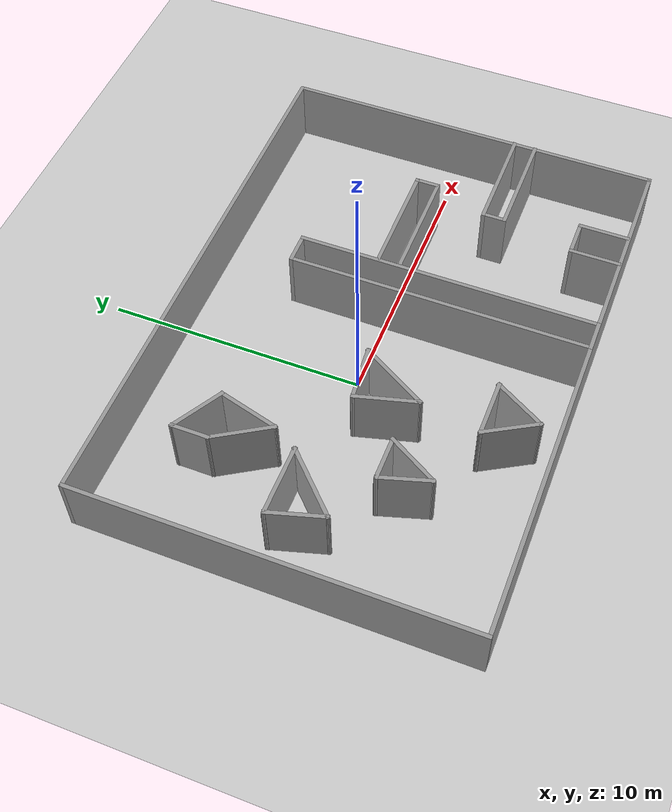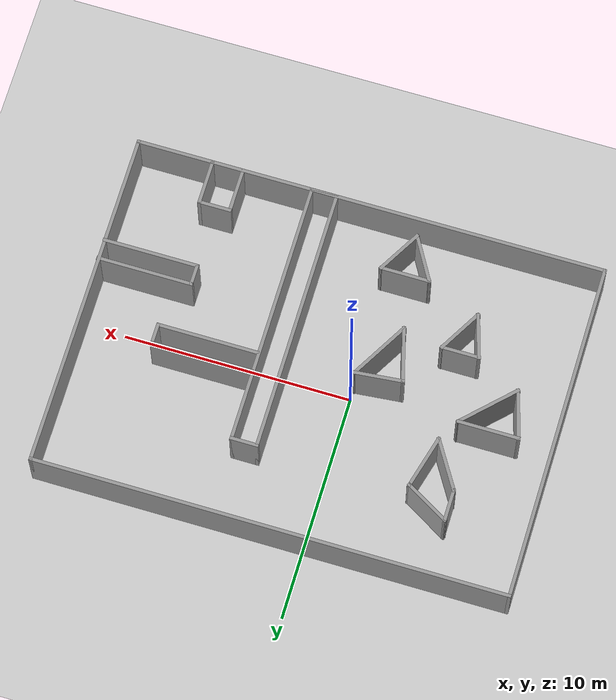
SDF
<sdf version="1.6">
 <world name="default">
  <light name="sun" type="directional">
   <pose>0 0 10 0 -0 0</pose>
   <diffuse>0.8 0.8 0.8 1</diffuse>
   <specular>0.2 0.2 0.2 1</specular>
   <attenuation>
    <range>1000</range>
    <constant>0.9</constant>
    <linear>0.01</linear>
    <quadratic>0.001</quadratic>
   </attenuation>
   <direction>-0.5 0.1 -0.9</direction>
  </light>
  <model name="ground_plane">
   <static>1</static>
   <link name="link">
    <collision name="collision">
     <geometry><plane><normal>0 0 1</normal><size>100 100</size></plane></geometry>
     <surface>
      <contact><collide_bitmask>65535</collide_bitmask></contact>
      <friction><ode><mu>100</mu><mu2>50</mu2></ode></friction>
     </surface>
    </collision>
    <visual name="visual">
     <cast_shadows>0</cast_shadows>
     <geometry><plane><normal>0 0 1</normal><size>100 100</size></plane></geometry>
     <material>
      <script><uri>file://media/materials/scripts/gazebo.material</uri><name>Gazebo/Grey</name></script>
     </material>
    </visual>
   </link>
  </model>
  <gravity>0 0 -9.8</gravity>
  <magnetic_field>6e-06 2.3e-05 -4.2e-05</magnetic_field>
  <atmosphere type="adiabatic"/>
  <physics name="default_physics" default="0" type="ode">
   <max_step_size>0.001</max_step_size>
   <real_time_factor>1</real_time_factor>
   <real_time_update_rate>1000</real_time_update_rate>
  </physics>
  <scene><ambient>0.4 0.4 0.4 1</ambient><background>0.7 0.7 0.7 1</background><shadows>1</shadows></scene>
  <spherical_coordinates>
   <surface_model>EARTH_WGS84</surface_model>
   <latitude_deg>0</latitude_deg>
   <longitude_deg>0</longitude_deg>
   <elevation>0</elevation>
   <heading_deg>0</heading_deg>
  </spherical_coordinates>
  <model name="yunjing_world">
   <pose>1.44696 -0.364033 0 0 -0 0</pose>
   <link name="Wall_13">
    <collision name="Wall_13_Collision">
     <geometry><box><size>20.75 0.15 2.5</size></box></geometry>
     <pose>0 0 1.25 0 -0 0</pose>
    </collision>
    <visual name="Wall_13_Visual">
     <pose>0 0 1.25 0 -0 0</pose>
     <geometry><box><size>20.75 0.15 2.5</size></box></geometry>
     <material>
      <script><uri>file://media/materials/scripts/gazebo.material</uri><name>Gazebo/Grey</name></script>
      <ambient>1 1 1 1</ambient>
     </material>
     <meta><layer>0</layer></meta>
    </visual>
    <pose>-0.013178 7.425 0 0 -0 0</pose>
   </link>
   <link name="Wall_14">
    <collision name="Wall_14_Collision">
     <geometry><box><size>15 0.15 2.5</size></box></geometry>
     <pose>0 0 1.25 0 -0 0</pose>
    </collision>
    <visual name="Wall_14_Visual">
     <pose>0 0 1.25 0 -0 0</pose>
     <geometry><box><size>15 0.15 2.5</size></box></geometry>
     <material>
      <script><uri>file://media/materials/scripts/gazebo.material</uri><name>Gazebo/Grey</name></script>
      <ambient>1 1 1 1</ambient>
     </material>
     <meta><layer>0</layer></meta>
    </visual>
    <pose>10.2868 -0 0 0 -0 -1.5708</pose>
   </link>
   <link name="Wall_16">
    <collision name="Wall_16_Collision">
     <geometry><box><size>15 0.15 2.5</size></box></geometry>
     <pose>0 0 1.25 0 -0 0</pose>
    </collision>
    <visual name="Wall_16_Visual">
     <pose>0 0 1.25 0 -0 0</pose>
     <geometry><box><size>15 0.15 2.5</size></box></geometry>
     <material>
      <script><uri>file://media/materials/scripts/gazebo.material</uri><name>Gazebo/Grey</name></script>
      <ambient>1 1 1 1</ambient>
     </material>
     <meta><layer>0</layer></meta>
    </visual>
    <pose>-10.3132 -0 0 0 -0 -1.5708</pose>
   </link>
   <link name="Wall_17">
    <collision name="Wall_17_Collision">
     <geometry><box><size>20.75 0.15 2.5</size></box></geometry>
     <pose>0 0 1.25 0 -0 0</pose>
    </collision>
    <visual name="Wall_17_Visual">
     <pose>0 0 1.25 0 -0 0</pose>
     <geometry><box><size>20.75 0.15 2.5</size></box></geometry>
     <material>
      <script><uri>file://media/materials/scripts/gazebo.material</uri><name>Gazebo/Grey</name></script>
      <ambient>1 1 1 1</ambient>
     </material>
     <meta><layer>0</layer></meta>
    </visual>
    <pose>-0.013178 -7.425 0 0 -0 0</pose>
   </link>
   <link name="Wall_19">
    <collision name="Wall_19_Collision">
     <geometry><box><size>1.5 0.15 2.5</size></box></geometry>
     <pose>0 0 1.25 0 -0 0</pose>
    </collision>
    <visual name="Wall_19_Visual">
     <pose>0 0 1.25 0 -0 0</pose>
     <geometry><box><size>1.5 0.15 2.5</size></box></geometry>
     <material>
      <script><uri>file://media/materials/scripts/gazebo.material</uri><name>Gazebo/Grey</name></script>
      <ambient>1 1 1 1</ambient>
     </material>
     <meta><layer>0</layer></meta>
    </visual>
    <pose>-6.88112 4.39609 0 0 -0 1.5708</pose>
   </link>
   <link name="Wall_20">
    <collision name="Wall_20_Collision">
     <geometry><box><size>2.25 0.15 2.5</size></box></geometry>
     <pose>0 0 1.25 0 -0 0</pose>
    </collision>
    <visual name="Wall_20_Visual">
     <pose>0 0 1.25 0 -0 0</pose>
     <geometry><box><size>2.25 0.15 2.5</size></box></geometry>
     <material>
      <script><uri>file://media/materials/scripts/gazebo.material</uri><name>Gazebo/Grey</name></script>
      <ambient>1 1 1 1</ambient>
     </material>
     <meta><layer>0</layer></meta>
    </visual>
    <pose>-5.97179 4.54609 0 0 -0 -0.523599</pose>
   </link>
   <link name="Wall_21">
    <collision name="Wall_21_Collision">
     <geometry><box><size>2.5 0.15 2.5</size></box></geometry>
     <pose>0 0 1.25 0 -0 0</pose>
    </collision>
    <visual name="Wall_21_Visual">
     <pose>0 0 1.25 0 -0 0</pose>
     <geometry><box><size>2.5 0.15 2.5</size></box></geometry>
     <material>
      <script><uri>file://media/materials/scripts/gazebo.material</uri><name>Gazebo/Grey</name></script>
      <ambient>1 1 1 1</ambient>
     </material>
     <meta><layer>0</layer></meta>
    </visual>
    <pose>-5.36657 2.88613 0 0 -0 -1.8326</pose>
   </link>
   <link name="Wall_22">
    <collision name="Wall_22_Collision">
     <geometry><box><size>2.46209 0.15 2.5</size></box></geometry>
     <pose>0 0 1.25 0 -0 0</pose>
    </collision>
    <visual name="Wall_22_Visual">
     <pose>0 0 1.25 0 -0 0</pose>
     <geometry><box><size>2.46209 0.15 2.5</size></box></geometry>
     <material>
      <script><uri>file://media/materials/scripts/gazebo.material</uri><name>Gazebo/Grey</name></script>
      <ambient>1 1 1 1</ambient>
     </material>
     <meta><layer>0</layer></meta>
    </visual>
    <pose>-6.2759 2.73613 0 0 -0 2.12178</pose>
   </link>
   <link name="Wall_24">
    <collision name="Wall_24_Collision">
     <geometry><box><size>2.5 0.15 2.5</size></box></geometry>
     <pose>0 0 1.25 0 -0 0</pose>
    </collision>
    <visual name="Wall_24_Visual">
     <pose>0 0 1.25 0 -0 0</pose>
     <geometry><box><size>2.5 0.15 2.5</size></box></geometry>
     <material>
      <script><uri>file://media/materials/scripts/gazebo.material</uri><name>Gazebo/Grey</name></script>
      <ambient>1 1 1 1</ambient>
     </material>
     <meta><layer>0</layer></meta>
    </visual>
    <pose>-3.22989 -1.38963 0 0 -0 -1.309</pose>
   </link>
   <link name="Wall_25">
    <collision name="Wall_25_Collision">
     <geometry><box><size>3 0.15 2.5</size></box></geometry>
     <pose>0 0 1.25 0 -0 0</pose>
    </collision>
    <visual name="Wall_25_Visual">
     <pose>0 0 1.25 0 -0 0</pose>
     <geometry><box><size>3 0.15 2.5</size></box></geometry>
     <material>
      <script><uri>file://media/materials/scripts/gazebo.material</uri><name>Gazebo/Grey</name></script>
      <ambient>1 1 1 1</ambient>
     </material>
     <meta><layer>0</layer></meta>
    </visual>
    <pose>-2.21328 -1.2905 0 0 -0 1.0472</pose>
   </link>
   <link name="Wall_26">
    <collision name="Wall_26_Collision">
     <geometry><box><size>2.19287 0.15 2.5</size></box></geometry>
     <pose>0 0 1.25 0 -0 0</pose>
    </collision>
    <visual name="Wall_26_Visual">
     <pose>0 0 1.25 0 -0 0</pose>
     <geometry><box><size>2.19287 0.15 2.5</size></box></geometry>
     <material>
      <script><uri>file://media/materials/scripts/gazebo.material</uri><name>Gazebo/Grey</name></script>
      <ambient>1 1 1 1</ambient>
     </material>
     <meta><layer>0</layer></meta>
    </visual>
    <pose>-2.51739 -0.155541 0 0 -0 -3.0444</pose>
   </link>
   <link name="Wall_28">
    <collision name="Wall_28_Collision">
     <geometry><box><size>11.75 0.15 2.5</size></box></geometry>
     <pose>0 0 1.25 0 -0 0</pose>
    </collision>
    <visual name="Wall_28_Visual">
     <pose>0 0 1.25 0 -0 0</pose>
     <geometry><box><size>11.75 0.15 2.5</size></box></geometry>
     <material>
      <script><uri>file://media/materials/scripts/gazebo.material</uri><name>Gazebo/Grey</name></script>
      <ambient>1 1 1 1</ambient>
     </material>
     <meta><layer>0</layer></meta>
    </visual>
    <pose>1.47817 -1.62017 0 0 -0 -1.5708</pose>
   </link>
   <link name="Wall_29">
    <collision name="Wall_29_Collision">
     <geometry><box><size>1.25 0.15 2.5</size></box></geometry>
     <pose>0 0 1.25 0 -0 0</pose>
    </collision>
    <visual name="Wall_29_Visual">
     <pose>0 0 1.25 0 -0 0</pose>
     <geometry><box><size>1.25 0.15 2.5</size></box></geometry>
     <material>
      <script><uri>file://media/materials/scripts/gazebo.material</uri><name>Gazebo/Grey</name></script>
      <ambient>1 1 1 1</ambient>
     </material>
     <meta><layer>0</layer></meta>
    </visual>
    <pose>2.02817 -7.42017 0 0 -0 0</pose>
   </link>
   <link name="Wall_30">
    <collision name="Wall_30_Collision">
     <geometry><box><size>11.75 0.15 2.5</size></box></geometry>
     <pose>0 0 1.25 0 -0 0</pose>
    </collision>
    <visual name="Wall_30_Visual">
     <pose>0 0 1.25 0 -0 0</pose>
     <geometry><box><size>11.75 0.15 2.5</size></box></geometry>
     <material>
      <script><uri>file://media/materials/scripts/gazebo.material</uri><name>Gazebo/Grey</name></script>
      <ambient>1 1 1 1</ambient>
     </material>
     <meta><layer>0</layer></meta>
    </visual>
    <pose>2.57817 -1.62017 0 0 -0 1.5708</pose>
   </link>
   <link name="Wall_31">
    <collision name="Wall_31_Collision">
     <geometry><box><size>1.25 0.15 2.5</size></box></geometry>
     <pose>0 0 1.25 0 -0 0</pose>
    </collision>
    <visual name="Wall_31_Visual">
     <pose>0 0 1.25 0 -0 0</pose>
     <geometry><box><size>1.25 0.15 2.5</size></box></geometry>
     <material>
      <script><uri>file://media/materials/scripts/gazebo.material</uri><name>Gazebo/Grey</name></script>
      <ambient>1 1 1 1</ambient>
     </material>
     <meta><layer>0</layer></meta>
    </visual>
    <pose>2.02817 4.17983 0 0 -0 3.14159</pose>
   </link>
   <link name="Wall_33">
    <collision name="Wall_33_Collision">
     <geometry><box><size>4.5 0.15 2.5</size></box></geometry>
     <pose>0 0 1.25 0 -0 0</pose>
    </collision>
    <visual name="Wall_33_Visual">
     <pose>0 0 1.25 0 -0 0</pose>
     <geometry><box><size>4.5 0.15 2.5</size></box></geometry>
     <material>
      <script><uri>file://media/materials/scripts/gazebo.material</uri><name>Gazebo/Grey</name></script>
      <ambient>1 1 1 1</ambient>
     </material>
     <meta><layer>0</layer></meta>
    </visual>
    <pose>4.8255 1.12156 0 0 -0 0</pose>
   </link>
   <link name="Wall_34">
    <collision name="Wall_34_Collision">
     <geometry><box><size>1 0.15 2.5</size></box></geometry>
     <pose>0 0 1.25 0 -0 0</pose>
    </collision>
    <visual name="Wall_34_Visual">
     <pose>0 0 1.25 0 -0 0</pose>
     <geometry><box><size>1 0.15 2.5</size></box></geometry>
     <material>
      <script><uri>file://media/materials/scripts/gazebo.material</uri><name>Gazebo/Grey</name></script>
      <ambient>1 1 1 1</ambient>
     </material>
     <meta><layer>0</layer></meta>
    </visual>
    <pose>7.0005 0.696558 0 0 -0 -1.5708</pose>
   </link>
   <link name="Wall_35">
    <collision name="Wall_35_Collision">
     <geometry><box><size>4.5 0.15 2.5</size></box></geometry>
     <pose>0 0 1.25 0 -0 0</pose>
    </collision>
    <visual name="Wall_35_Visual">
     <pose>0 0 1.25 0 -0 0</pose>
     <geometry><box><size>4.5 0.15 2.5</size></box></geometry>
     <material>
      <script><uri>file://media/materials/scripts/gazebo.material</uri><name>Gazebo/Grey</name></script>
      <ambient>1 1 1 1</ambient>
     </material>
     <meta><layer>0</layer></meta>
    </visual>
    <pose>4.8255 0.271558 0 0 -0 3.14159</pose>
   </link>
   <link name="Wall_37">
    <collision name="Wall_37_Collision">
     <geometry><box><size>4.25 0.15 2.5</size></box></geometry>
     <pose>0 0 1.25 0 -0 0</pose>
    </collision>
    <visual name="Wall_37_Visual">
     <pose>0 0 1.25 0 -0 0</pose>
     <geometry><box><size>4.25 0.15 2.5</size></box></geometry>
     <material>
      <script><uri>file://media/materials/scripts/gazebo.material</uri><name>Gazebo/Grey</name></script>
      <ambient>1 1 1 1</ambient>
     </material>
     <meta><layer>0</layer></meta>
    </visual>
    <pose>8.26318 -1.86875 0 0 -0 3.14159</pose>
   </link>
   <link name="Wall_38">
    <collision name="Wall_38_Collision">
     <geometry><box><size>1 0.15 2.5</size></box></geometry>
     <pose>0 0 1.25 0 -0 0</pose>
    </collision>
    <visual name="Wall_38_Visual">
     <pose>0 0 1.25 0 -0 0</pose>
     <geometry><box><size>1 0.15 2.5</size></box></geometry>
     <material>
      <script><uri>file://media/materials/scripts/gazebo.material</uri><name>Gazebo/Grey</name></script>
      <ambient>1 1 1 1</ambient>
     </material>
     <meta><layer>0</layer></meta>
    </visual>
    <pose>6.21318 -2.29375 0 0 -0 -1.5708</pose>
   </link>
   <link name="Wall_39">
    <collision name="Wall_39_Collision">
     <geometry><box><size>4.25 0.15 2.5</size></box></geometry>
     <pose>0 0 1.25 0 -0 0</pose>
    </collision>
    <visual name="Wall_39_Visual">
     <pose>0 0 1.25 0 -0 0</pose>
     <geometry><box><size>4.25 0.15 2.5</size></box></geometry>
     <material>
      <script><uri>file://media/materials/scripts/gazebo.material</uri><name>Gazebo/Grey</name></script>
      <ambient>1 1 1 1</ambient>
     </material>
     <meta><layer>0</layer></meta>
    </visual>
    <pose>8.26318 -2.71875 0 0 -0 0</pose>
   </link>
   <link name="Wall_41">
    <collision name="Wall_41_Collision">
     <geometry><box><size>2 0.15 2.5</size></box></geometry>
     <pose>0 0 1.25 0 -0 0</pose>
    </collision>
    <visual name="Wall_41_Visual">
     <pose>0 0 1.25 0 -0 0</pose>
     <geometry><box><size>2 0.15 2.5</size></box></geometry>
     <material>
      <script><uri>file://media/materials/scripts/gazebo.material</uri><name>Gazebo/Grey</name></script>
      <ambient>1 1 1 1</ambient>
     </material>
     <meta><layer>0</layer></meta>
    </visual>
    <pose>6.98306 -6.44865 0 0 -0 1.5708</pose>
   </link>
   <link name="Wall_42">
    <collision name="Wall_42_Collision">
     <geometry><box><size>1.5 0.15 2.5</size></box></geometry>
     <pose>0 0 1.25 0 -0 0</pose>
    </collision>
    <visual name="Wall_42_Visual">
     <pose>0 0 1.25 0 -0 0</pose>
     <geometry><box><size>1.5 0.15 2.5</size></box></geometry>
     <material>
      <script><uri>file://media/materials/scripts/gazebo.material</uri><name>Gazebo/Grey</name></script>
      <ambient>1 1 1 1</ambient>
     </material>
     <meta><layer>0</layer></meta>
    </visual>
    <pose>6.30806 -5.52365 0 0 -0 3.14159</pose>
   </link>
   <link name="Wall_43">
    <collision name="Wall_43_Collision">
     <geometry><box><size>2 0.15 2.5</size></box></geometry>
     <pose>0 0 1.25 0 -0 0</pose>
    </collision>
    <visual name="Wall_43_Visual">
     <pose>0 0 1.25 0 -0 0</pose>
     <geometry><box><size>2 0.15 2.5</size></box></geometry>
     <material>
      <script><uri>file://media/materials/scripts/gazebo.material</uri><name>Gazebo/Grey</name></script>
      <ambient>1 1 1 1</ambient>
     </material>
     <meta><layer>0</layer></meta>
    </visual>
    <pose>5.63306 -6.44865 0 0 -0 -1.5708</pose>
   </link>
   <link name="Wall_45">
    <collision name="Wall_45_Collision">
     <geometry><box><size>1.75 0.15 2.5</size></box></geometry>
     <pose>0 0 1.25 0 -0 0</pose>
    </collision>
    <visual name="Wall_45_Visual">
     <pose>0 0 1.25 0 -0 0</pose>
     <geometry><box><size>1.75 0.15 2.5</size></box></geometry>
     <material>
      <script><uri>file://media/materials/scripts/gazebo.material</uri><name>Gazebo/Grey</name></script>
      <ambient>1 1 1 1</ambient>
     </material>
     <meta><layer>0</layer></meta>
    </visual>
    <pose>-5.48645 -2.17458 0 0 -0 0</pose>
   </link>
   <link name="Wall_46">
    <collision name="Wall_46_Collision">
     <geometry><box><size>2.25 0.15 2.5</size></box></geometry>
     <pose>0 0 1.25 0 -0 0</pose>
    </collision>
    <visual name="Wall_46_Visual">
     <pose>0 0 1.25 0 -0 0</pose>
     <geometry><box><size>2.25 0.15 2.5</size></box></geometry>
     <material>
      <script><uri>file://media/materials/scripts/gazebo.material</uri><name>Gazebo/Grey</name></script>
      <ambient>1 1 1 1</ambient>
     </material>
     <meta><layer>0</layer></meta>
    </visual>
    <pose>-5.21145 -3.08391 0 0 -0 -2.0944</pose>
   </link>
   <link name="Wall_47">
    <collision name="Wall_47_Collision">
     <geometry><box><size>2.05 0.15 2.5</size></box></geometry>
     <pose>0 0 1.25 0 -0 0</pose>
    </collision>
    <visual name="Wall_47_Visual">
     <pose>0 0 1.25 0 -0 0</pose>
     <geometry><box><size>2.05 0.15 2.5</size></box></geometry>
     <material>
      <script><uri>file://media/materials/scripts/gazebo.material</uri><name>Gazebo/Grey</name></script>
      <ambient>1 1 1 1</ambient>
     </material>
     <meta><layer>0</layer></meta>
    </visual>
    <pose>-6.01145 -3.08391 0 0 -0 1.86447</pose>
   </link>
   <link name="Wall_49">
    <collision name="Wall_49_Collision">
     <geometry><box><size>2.25 0.15 2.5</size></box></geometry>
     <pose>0 0 1.25 0 -0 0</pose>
    </collision>
    <visual name="Wall_49_Visual">
     <pose>0 0 1.25 0 -0 0</pose>
     <geometry><box><size>2.25 0.15 2.5</size></box></geometry>
     <material>
      <script><uri>file://media/materials/scripts/gazebo.material</uri><name>Gazebo/Grey</name></script>
      <ambient>1 1 1 1</ambient>
     </material>
     <meta><layer>0</layer></meta>
    </visual>
    <pose>-2.29711 -4.85907 0 0 -0 0</pose>
   </link>
   <link name="Wall_50">
    <collision name="Wall_50_Collision">
     <geometry><box><size>2.25 0.15 2.5</size></box></geometry>
     <pose>0 0 1.25 0 -0 0</pose>
    </collision>
    <visual name="Wall_50_Visual">
     <pose>0 0 1.25 0 -0 0</pose>
     <geometry><box><size>2.25 0.15 2.5</size></box></geometry>
     <material>
      <script><uri>file://media/materials/scripts/gazebo.material</uri><name>Gazebo/Grey</name></script>
      <ambient>1 1 1 1</ambient>
     </material>
     <meta><layer>0</layer></meta>
    </visual>
    <pose>-1.77211 -5.76839 0 0 -0 -2.0944</pose>
   </link>
   <link name="Wall_51">
    <collision name="Wall_51_Collision">
     <geometry><box><size>2.25 0.15 2.5</size></box></geometry>
     <pose>0 0 1.25 0 -0 0</pose>
    </collision>
    <visual name="Wall_51_Visual">
     <pose>0 0 1.25 0 -0 0</pose>
     <geometry><box><size>2.25 0.15 2.5</size></box></geometry>
     <material>
      <script><uri>file://media/materials/scripts/gazebo.material</uri><name>Gazebo/Grey</name></script>
      <ambient>1 1 1 1</ambient>
     </material>
     <meta><layer>0</layer></meta>
    </visual>
    <pose>-2.82211 -5.76839 0 0 -0 2.0944</pose>
   </link>
   <link name="Wall_53">
    <collision name="Wall_53_Collision">
     <geometry><box><size>2.75 0.15 2.5</size></box></geometry>
     <pose>0 0 1.25 0 -0 0</pose>
    </collision>
    <visual name="Wall_53_Visual">
     <pose>0 0 1.25 0 -0 0</pose>
     <geometry><box><size>2.75 0.15 2.5</size></box></geometry>
     <material>
      <script><uri>file://media/materials/scripts/gazebo.material</uri><name>Gazebo/Grey</name></script>
      <ambient>1 1 1 1</ambient>
     </material>
     <meta><layer>0</layer></meta>
    </visual>
    <pose>-7.53501 0.78175 0 0 -0 0</pose>
   </link>
   <link name="Wall_54">
    <collision name="Wall_54_Collision">
     <geometry><box><size>3 0.15 2.5</size></box></geometry>
     <pose>0 0 1.25 0 -0 0</pose>
    </collision>
    <visual name="Wall_54_Visual">
     <pose>0 0 1.25 0 -0 0</pose>
     <geometry><box><size>3 0.15 2.5</size></box></geometry>
     <material>
      <script><uri>file://media/materials/scripts/gazebo.material</uri><name>Gazebo/Grey</name></script>
      <ambient>1 1 1 1</ambient>
     </material>
     <meta><layer>0</layer></meta>
    </visual>
    <pose>-7.24264 -0.225877 0 0 -0 -2.35619</pose>
   </link>
   <link name="Wall_55">
    <collision name="Wall_55_Collision">
     <geometry><box><size>2.24837 0.15 2.5</size></box></geometry>
     <pose>0 0 1.25 0 -0 0</pose>
    </collision>
    <visual name="Wall_55_Visual">
     <pose>0 0 1.25 0 -0 0</pose>
     <geometry><box><size>2.24837 0.15 2.5</size></box></geometry>
     <material>
      <script><uri>file://media/materials/scripts/gazebo.material</uri><name>Gazebo/Grey</name></script>
      <ambient>1 1 1 1</ambient>
     </material>
     <meta><layer>0</layer></meta>
    </visual>
    <pose>-8.54264 -0.225877 0 0 -0 1.8532</pose>
   </link>
   <static>1</static>
  </model>
 </world>
</sdf>
